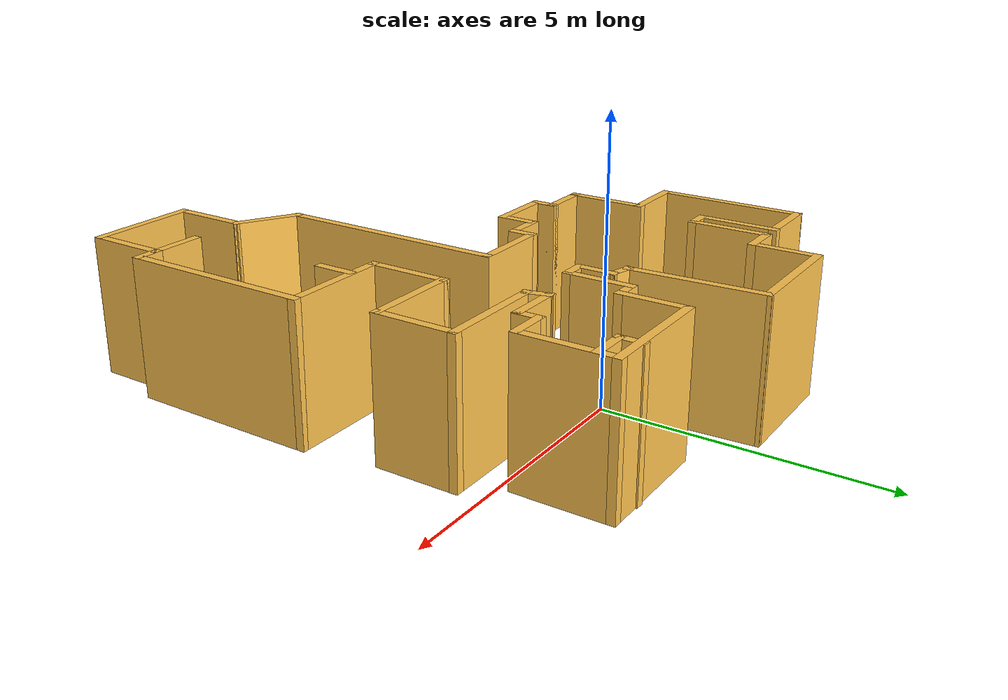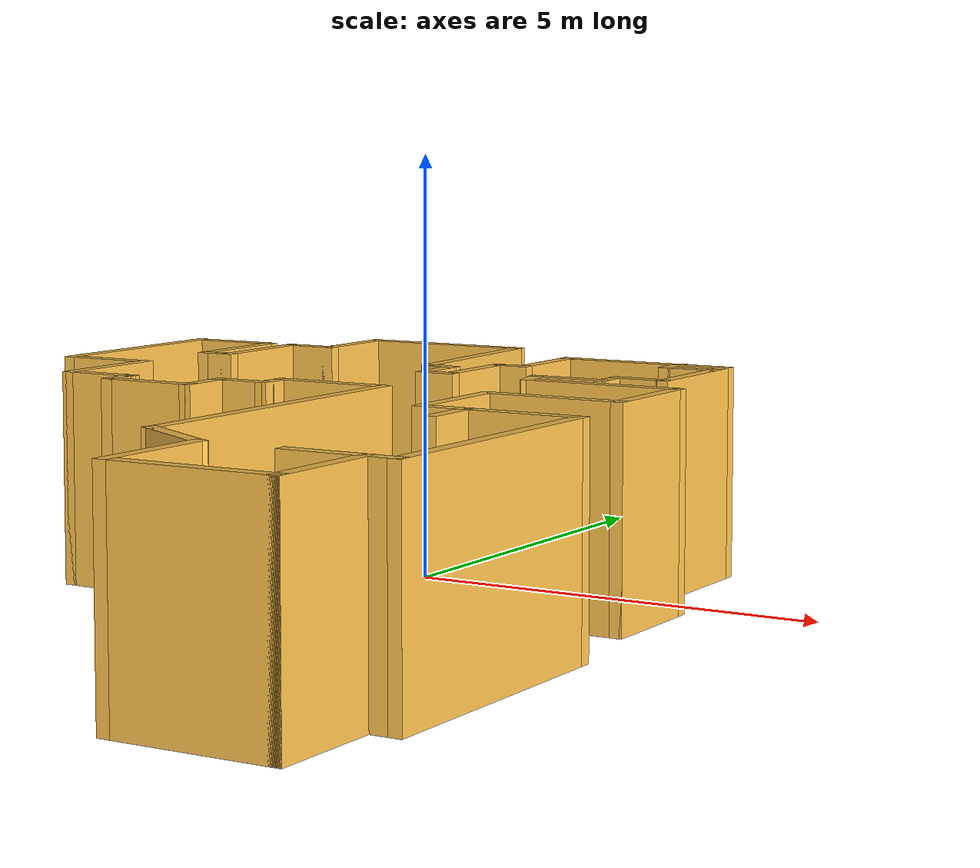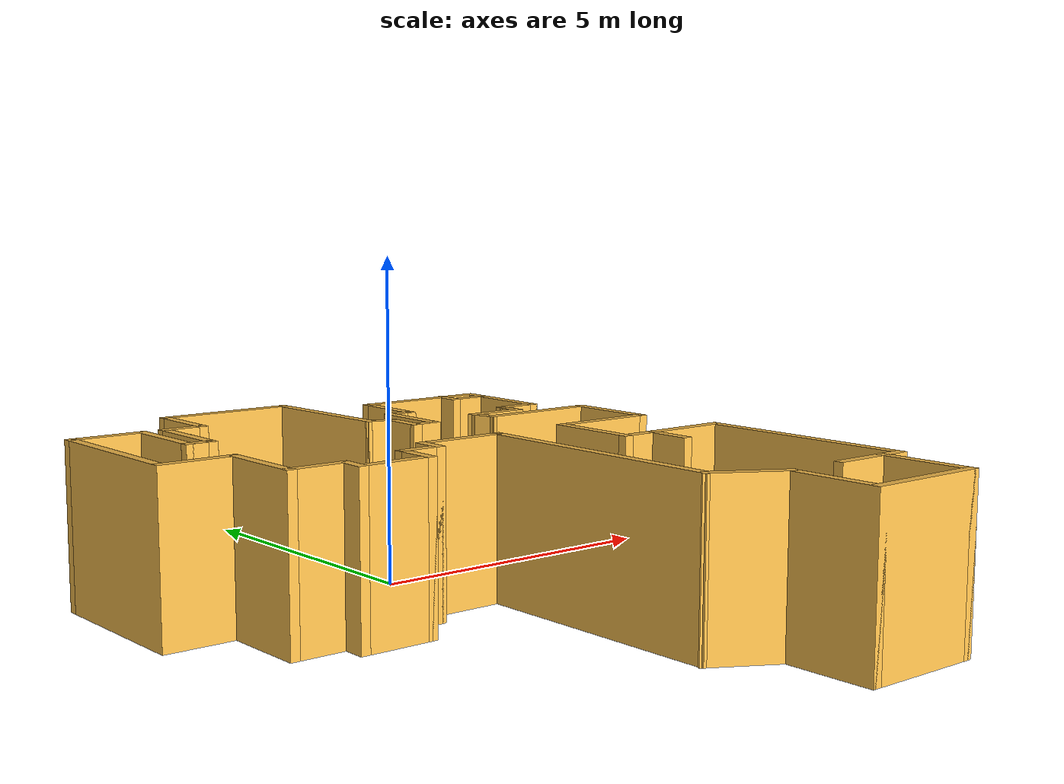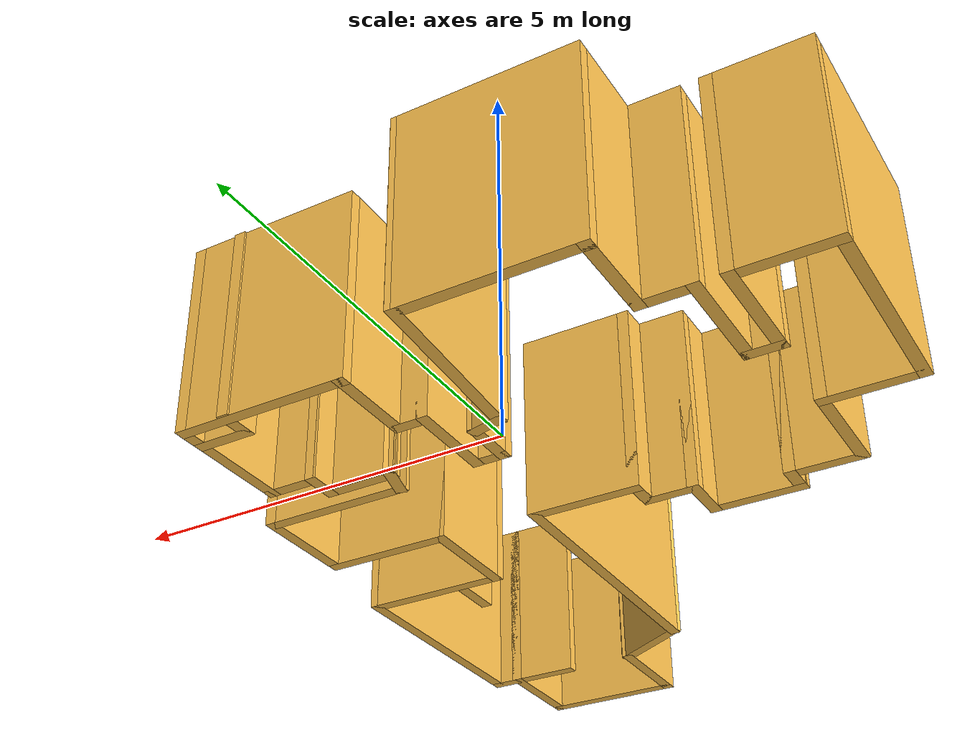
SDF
<?xml version='1.0'?>
<sdf version='1.6'>
  <model name='map_54'>
    <pose frame=''>-0.329924 -2.62834 0 0 -0 0</pose>
    <link name='Wall_0'>
      <collision name='Wall_0_Collision'>
        <geometry>
          <box>
            <size>2.25 0.15 2.5</size>
          </box>
        </geometry>
        <pose frame=''>0 0 1.25 0 -0 0</pose>
      </collision>
      <visual name='Wall_0_Visual'>
        <pose frame=''>0 0 1.25 0 -0 0</pose>
        <geometry>
          <box>
            <size>2.25 0.15 2.5</size>
          </box>
        </geometry>
        <material>
          <script>
            <uri>file://media/materials/scripts/gazebo.material</uri>
            <name>Gazebo/Grey</name>
          </script>
          <ambient>1 0.764706 0.305882 1</ambient>
        </material>
        <meta>
          <layer>0</layer>
        </meta>
      </visual>
      <pose frame=''>-0.976314 5.22301 0 0 -0 3.14159</pose>
    </link>
    <link name='Wall_1'>
      <collision name='Wall_1_Collision'>
        <geometry>
          <box>
            <size>1.25 0.15 2.5</size>
          </box>
        </geometry>
        <pose frame=''>0 0 1.25 0 -0 0</pose>
      </collision>
      <visual name='Wall_1_Visual'>
        <pose frame=''>0 0 1.25 0 -0 0</pose>
        <geometry>
          <box>
            <size>1.25 0.15 2.5</size>
          </box>
        </geometry>
        <material>
          <script>
            <uri>file://media/materials/scripts/gazebo.material</uri>
            <name>Gazebo/Grey</name>
          </script>
          <ambient>1 0.764706 0.305882 1</ambient>
        </material>
        <meta>
          <layer>0</layer>
        </meta>
      </visual>
      <pose frame=''>-2.02631 4.67301 0 0 -0 -1.5708</pose>
    </link>
    <link name='Wall_10'>
      <collision name='Wall_10_Collision'>
        <geometry>
          <box>
            <size>1.25 0.15 2.5</size>
          </box>
        </geometry>
        <pose frame=''>0 0 1.25 0 -0 0</pose>
      </collision>
      <visual name='Wall_10_Visual'>
        <pose frame=''>0 0 1.25 0 -0 0</pose>
        <geometry>
          <box>
            <size>1.25 0.15 2.5</size>
          </box>
        </geometry>
        <material>
          <script>
            <uri>file://media/materials/scripts/gazebo.material</uri>
            <name>Gazebo/Grey</name>
          </script>
          <ambient>1 0.764706 0.305882 1</ambient>
        </material>
        <meta>
          <layer>0</layer>
        </meta>
      </visual>
      <pose frame=''>-3.52631 1.52301 0 0 -0 0</pose>
    </link>
    <link name='Wall_11'>
      <collision name='Wall_11_Collision'>
        <geometry>
          <box>
            <size>1.5 0.15 2.5</size>
          </box>
        </geometry>
        <pose frame=''>0 0 1.25 0 -0 0</pose>
      </collision>
      <visual name='Wall_11_Visual'>
        <pose frame=''>0 0 1.25 0 -0 0</pose>
        <geometry>
          <box>
            <size>1.5 0.15 2.5</size>
          </box>
        </geometry>
        <material>
          <script>
            <uri>file://media/materials/scripts/gazebo.material</uri>
            <name>Gazebo/Grey</name>
          </script>
          <ambient>1 0.764706 0.305882 1</ambient>
        </material>
        <meta>
          <layer>0</layer>
        </meta>
      </visual>
      <pose frame=''>-2.97631 0.848012 0 0 -0 -1.5708</pose>
    </link>
    <link name='Wall_12'>
      <collision name='Wall_12_Collision'>
        <geometry>
          <box>
            <size>1 0.15 2.5</size>
          </box>
        </geometry>
        <pose frame=''>0 0 1.25 0 -0 0</pose>
      </collision>
      <visual name='Wall_12_Visual'>
        <pose frame=''>0 0 1.25 0 -0 0</pose>
        <geometry>
          <box>
            <size>1 0.15 2.5</size>
          </box>
        </geometry>
        <material>
          <script>
            <uri>file://media/materials/scripts/gazebo.material</uri>
            <name>Gazebo/Grey</name>
          </script>
          <ambient>1 0.764706 0.305882 1</ambient>
        </material>
        <meta>
          <layer>0</layer>
        </meta>
      </visual>
      <pose frame=''>-2.55131 0.173012 0 0 -0 0</pose>
    </link>
    <link name='Wall_13'>
      <collision name='Wall_13_Collision'>
        <geometry>
          <box>
            <size>0.5 0.15 2.5</size>
          </box>
        </geometry>
        <pose frame=''>0 0 1.25 0 -0 0</pose>
      </collision>
      <visual name='Wall_13_Visual'>
        <pose frame=''>0 0 1.25 0 -0 0</pose>
        <geometry>
          <box>
            <size>0.5 0.15 2.5</size>
          </box>
        </geometry>
        <material>
          <script>
            <uri>file://media/materials/scripts/gazebo.material</uri>
            <name>Gazebo/Grey</name>
          </script>
          <ambient>1 0.764706 0.305882 1</ambient>
        </material>
        <meta>
          <layer>0</layer>
        </meta>
      </visual>
      <pose frame=''>-2.12631 -0.001988 0 0 -0 -1.5708</pose>
    </link>
    <link name='Wall_14'>
      <collision name='Wall_14_Collision'>
        <geometry>
          <box>
            <size>1.25 0.15 2.5</size>
          </box>
        </geometry>
        <pose frame=''>0 0 1.25 0 -0 0</pose>
      </collision>
      <visual name='Wall_14_Visual'>
        <pose frame=''>0 0 1.25 0 -0 0</pose>
        <geometry>
          <box>
            <size>1.25 0.15 2.5</size>
          </box>
        </geometry>
        <material>
          <script>
            <uri>file://media/materials/scripts/gazebo.material</uri>
            <name>Gazebo/Grey</name>
          </script>
          <ambient>1 0.764706 0.305882 1</ambient>
        </material>
        <meta>
          <layer>0</layer>
        </meta>
      </visual>
      <pose frame=''>-1.57631 -0.176988 0 0 -0 0</pose>
    </link>
    <link name='Wall_15'>
      <collision name='Wall_15_Collision'>
        <geometry>
          <box>
            <size>0.75 0.15 2.5</size>
          </box>
        </geometry>
        <pose frame=''>0 0 1.25 0 -0 0</pose>
      </collision>
      <visual name='Wall_15_Visual'>
        <pose frame=''>0 0 1.25 0 -0 0</pose>
        <geometry>
          <box>
            <size>0.75 0.15 2.5</size>
          </box>
        </geometry>
        <material>
          <script>
            <uri>file://media/materials/scripts/gazebo.material</uri>
            <name>Gazebo/Grey</name>
          </script>
          <ambient>1 0.764706 0.305882 1</ambient>
        </material>
        <meta>
          <layer>0</layer>
        </meta>
      </visual>
      <pose frame=''>-1.02631 0.123012 0 0 -0 1.5708</pose>
    </link>
    <link name='Wall_16'>
      <collision name='Wall_16_Collision'>
        <geometry>
          <box>
            <size>0.75 0.15 2.5</size>
          </box>
        </geometry>
        <pose frame=''>0 0 1.25 0 -0 0</pose>
      </collision>
      <visual name='Wall_16_Visual'>
        <pose frame=''>0 0 1.25 0 -0 0</pose>
        <geometry>
          <box>
            <size>0.75 0.15 2.5</size>
          </box>
        </geometry>
        <material>
          <script>
            <uri>file://media/materials/scripts/gazebo.material</uri>
            <name>Gazebo/Grey</name>
          </script>
          <ambient>1 0.764706 0.305882 1</ambient>
        </material>
        <meta>
          <layer>0</layer>
        </meta>
      </visual>
      <pose frame=''>-0.726314 0.423012 0 0 -0 0</pose>
    </link>
    <link name='Wall_17'>
      <collision name='Wall_17_Collision'>
        <geometry>
          <box>
            <size>0.5 0.15 2.5</size>
          </box>
        </geometry>
        <pose frame=''>0 0 1.25 0 -0 0</pose>
      </collision>
      <visual name='Wall_17_Visual'>
        <pose frame=''>0 0 1.25 0 -0 0</pose>
        <geometry>
          <box>
            <size>0.5 0.15 2.5</size>
          </box>
        </geometry>
        <material>
          <script>
            <uri>file://media/materials/scripts/gazebo.material</uri>
            <name>Gazebo/Grey</name>
          </script>
          <ambient>1 0.764706 0.305882 1</ambient>
        </material>
        <meta>
          <layer>0</layer>
        </meta>
      </visual>
      <pose frame=''>-0.426314 0.598012 0 0 -0 1.5708</pose>
    </link>
    <link name='Wall_18'>
      <collision name='Wall_18_Collision'>
        <geometry>
          <box>
            <size>1.5 0.15 2.5</size>
          </box>
        </geometry>
        <pose frame=''>0 0 1.25 0 -0 0</pose>
      </collision>
      <visual name='Wall_18_Visual'>
        <pose frame=''>0 0 1.25 0 -0 0</pose>
        <geometry>
          <box>
            <size>1.5 0.15 2.5</size>
          </box>
        </geometry>
        <material>
          <script>
            <uri>file://media/materials/scripts/gazebo.material</uri>
            <name>Gazebo/Grey</name>
          </script>
          <ambient>1 0.764706 0.305882 1</ambient>
        </material>
        <meta>
          <layer>0</layer>
        </meta>
      </visual>
      <pose frame=''>0.248686 0.773012 0 0 -0 0</pose>
    </link>
    <link name='Wall_19'>
      <collision name='Wall_19_Collision'>
        <geometry>
          <box>
            <size>4.25 0.15 2.5</size>
          </box>
        </geometry>
        <pose frame=''>0 0 1.25 0 -0 0</pose>
      </collision>
      <visual name='Wall_19_Visual'>
        <pose frame=''>0 0 1.25 0 -0 0</pose>
        <geometry>
          <box>
            <size>4.25 0.15 2.5</size>
          </box>
        </geometry>
        <material>
          <script>
            <uri>file://media/materials/scripts/gazebo.material</uri>
            <name>Gazebo/Grey</name>
          </script>
          <ambient>1 0.764706 0.305882 1</ambient>
        </material>
        <meta>
          <layer>0</layer>
        </meta>
      </visual>
      <pose frame=''>0.923686 -1.27699 0 0 -0 -1.5708</pose>
    </link>
    <link name='Wall_20'>
      <collision name='Wall_20_Collision'>
        <geometry>
          <box>
            <size>1.25 0.15 2.5</size>
          </box>
        </geometry>
        <pose frame=''>0 0 1.25 0 -0 0</pose>
      </collision>
      <visual name='Wall_20_Visual'>
        <pose frame=''>0 0 1.25 0 -0 0</pose>
        <geometry>
          <box>
            <size>1.25 0.15 2.5</size>
          </box>
        </geometry>
        <material>
          <script>
            <uri>file://media/materials/scripts/gazebo.material</uri>
            <name>Gazebo/Grey</name>
          </script>
          <ambient>1 0.764706 0.305882 1</ambient>
        </material>
        <meta>
          <layer>0</layer>
        </meta>
      </visual>
      <pose frame=''>1.4 -3.60199 0 0 -0 -0.523599</pose>
    </link>
    <link name='Wall_21'>
      <collision name='Wall_21_Collision'>
        <geometry>
          <box>
            <size>1.5 0.15 2.5</size>
          </box>
        </geometry>
        <pose frame=''>0 0 1.25 0 -0 0</pose>
      </collision>
      <visual name='Wall_21_Visual'>
        <pose frame=''>0 0 1.25 0 -0 0</pose>
        <geometry>
          <box>
            <size>1.5 0.15 2.5</size>
          </box>
        </geometry>
        <material>
          <script>
            <uri>file://media/materials/scripts/gazebo.material</uri>
            <name>Gazebo/Grey</name>
          </script>
          <ambient>1 0.764706 0.305882 1</ambient>
        </material>
        <meta>
          <layer>0</layer>
        </meta>
      </visual>
      <pose frame=''>1.87631 -4.55199 0 0 -0 -1.5708</pose>
    </link>
    <link name='Wall_22'>
      <collision name='Wall_22_Collision'>
        <geometry>
          <box>
            <size>2 0.15 2.5</size>
          </box>
        </geometry>
        <pose frame=''>0 0 1.25 0 -0 0</pose>
      </collision>
      <visual name='Wall_22_Visual'>
        <pose frame=''>0 0 1.25 0 -0 0</pose>
        <geometry>
          <box>
            <size>2 0.15 2.5</size>
          </box>
        </geometry>
        <material>
          <script>
            <uri>file://media/materials/scripts/gazebo.material</uri>
            <name>Gazebo/Grey</name>
          </script>
          <ambient>1 0.764706 0.305882 1</ambient>
        </material>
        <meta>
          <layer>0</layer>
        </meta>
      </visual>
      <pose frame=''>2.80131 -5.22699 0 0 -0 0</pose>
    </link>
    <link name='Wall_23'>
      <collision name='Wall_23_Collision'>
        <geometry>
          <box>
            <size>1.5 0.15 2.5</size>
          </box>
        </geometry>
        <pose frame=''>0 0 1.25 0 -0 0</pose>
      </collision>
      <visual name='Wall_23_Visual'>
        <pose frame=''>0 0 1.25 0 -0 0</pose>
        <geometry>
          <box>
            <size>1.5 0.15 2.5</size>
          </box>
        </geometry>
        <material>
          <script>
            <uri>file://media/materials/scripts/gazebo.material</uri>
            <name>Gazebo/Grey</name>
          </script>
          <ambient>1 0.764706 0.305882 1</ambient>
        </material>
        <meta>
          <layer>0</layer>
        </meta>
      </visual>
      <pose frame=''>3.72631 -4.55199 0 0 -0 1.5708</pose>
    </link>
    <link name='Wall_24'>
      <collision name='Wall_24_Collision'>
        <geometry>
          <box>
            <size>0.5 0.15 2.5</size>
          </box>
        </geometry>
        <pose frame=''>0 0 1.25 0 -0 0</pose>
      </collision>
      <visual name='Wall_24_Visual'>
        <pose frame=''>0 0 1.25 0 -0 0</pose>
        <geometry>
          <box>
            <size>0.5 0.15 2.5</size>
          </box>
        </geometry>
        <material>
          <script>
            <uri>file://media/materials/scripts/gazebo.material</uri>
            <name>Gazebo/Grey</name>
          </script>
          <ambient>1 0.764706 0.305882 1</ambient>
        </material>
        <meta>
          <layer>0</layer>
        </meta>
      </visual>
      <pose frame=''>3.90131 -3.87699 0 0 -0 0</pose>
    </link>
    <link name='Wall_25'>
      <collision name='Wall_25_Collision'>
        <geometry>
          <box>
            <size>3.5 0.15 2.5</size>
          </box>
        </geometry>
        <pose frame=''>0 0 1.25 0 -0 0</pose>
      </collision>
      <visual name='Wall_25_Visual'>
        <pose frame=''>0 0 1.25 0 -0 0</pose>
        <geometry>
          <box>
            <size>3.5 0.15 2.5</size>
          </box>
        </geometry>
        <material>
          <script>
            <uri>file://media/materials/scripts/gazebo.material</uri>
            <name>Gazebo/Grey</name>
          </script>
          <ambient>1 0.764706 0.305882 1</ambient>
        </material>
        <meta>
          <layer>0</layer>
        </meta>
      </visual>
      <pose frame=''>4.07631 -2.20199 0 0 -0 1.5708</pose>
    </link>
    <link name='Wall_26'>
      <collision name='Wall_26_Collision'>
        <geometry>
          <box>
            <size>2 0.15 2.5</size>
          </box>
        </geometry>
        <pose frame=''>0 0 1.25 0 -0 0</pose>
      </collision>
      <visual name='Wall_26_Visual'>
        <pose frame=''>0 0 1.25 0 -0 0</pose>
        <geometry>
          <box>
            <size>2 0.15 2.5</size>
          </box>
        </geometry>
        <material>
          <script>
            <uri>file://media/materials/scripts/gazebo.material</uri>
            <name>Gazebo/Grey</name>
          </script>
          <ambient>1 0.764706 0.305882 1</ambient>
        </material>
        <meta>
          <layer>0</layer>
        </meta>
      </visual>
      <pose frame=''>3.15131 -0.526988 0 0 -0 3.14159</pose>
    </link>
    <link name='Wall_27'>
      <collision name='Wall_27_Collision'>
        <geometry>
          <box>
            <size>1.5 0.15 2.5</size>
          </box>
        </geometry>
        <pose frame=''>0 0 1.25 0 -0 0</pose>
      </collision>
      <visual name='Wall_27_Visual'>
        <pose frame=''>0 0 1.25 0 -0 0</pose>
        <geometry>
          <box>
            <size>1.5 0.15 2.5</size>
          </box>
        </geometry>
        <material>
          <script>
            <uri>file://media/materials/scripts/gazebo.material</uri>
            <name>Gazebo/Grey</name>
          </script>
          <ambient>1 0.764706 0.305882 1</ambient>
        </material>
        <meta>
          <layer>0</layer>
        </meta>
      </visual>
      <pose frame=''>2.22631 0.148012 0 0 -0 1.5708</pose>
    </link>
    <link name='Wall_28'>
      <collision name='Wall_28_Collision'>
        <geometry>
          <box>
            <size>1.75 0.15 2.5</size>
          </box>
        </geometry>
        <pose frame=''>0 0 1.25 0 -0 0</pose>
      </collision>
      <visual name='Wall_28_Visual'>
        <pose frame=''>0 0 1.25 0 -0 0</pose>
        <geometry>
          <box>
            <size>1.75 0.15 2.5</size>
          </box>
        </geometry>
        <material>
          <script>
            <uri>file://media/materials/scripts/gazebo.material</uri>
            <name>Gazebo/Grey</name>
          </script>
          <ambient>1 0.764706 0.305882 1</ambient>
        </material>
        <meta>
          <layer>0</layer>
        </meta>
      </visual>
      <pose frame=''>3.02631 0.823012 0 0 -0 0</pose>
    </link>
    <link name='Wall_29'>
      <collision name='Wall_29_Collision'>
        <geometry>
          <box>
            <size>1.5 0.15 2.5</size>
          </box>
        </geometry>
        <pose frame=''>0 0 1.25 0 -0 0</pose>
      </collision>
      <visual name='Wall_29_Visual'>
        <pose frame=''>0 0 1.25 0 -0 0</pose>
        <geometry>
          <box>
            <size>1.5 0.15 2.5</size>
          </box>
        </geometry>
        <material>
          <script>
            <uri>file://media/materials/scripts/gazebo.material</uri>
            <name>Gazebo/Grey</name>
          </script>
          <ambient>1 0.764706 0.305882 1</ambient>
        </material>
        <meta>
          <layer>0</layer>
        </meta>
      </visual>
      <pose frame=''>3.82631 1.49801 0 0 -0 1.5708</pose>
    </link>
    <link name='Wall_30'>
      <collision name='Wall_30_Collision'>
        <geometry>
          <box>
            <size>2 0.15 2.5</size>
          </box>
        </geometry>
        <pose frame=''>0 0 1.25 0 -0 0</pose>
      </collision>
      <visual name='Wall_30_Visual'>
        <pose frame=''>0 0 1.25 0 -0 0</pose>
        <geometry>
          <box>
            <size>2 0.15 2.5</size>
          </box>
        </geometry>
        <material>
          <script>
            <uri>file://media/materials/scripts/gazebo.material</uri>
            <name>Gazebo/Grey</name>
          </script>
          <ambient>1 0.764706 0.305882 1</ambient>
        </material>
        <meta>
          <layer>0</layer>
        </meta>
      </visual>
      <pose frame=''>2.90131 2.17301 0 0 -0 3.14159</pose>
    </link>
    <link name='Wall_31'>
      <collision name='Wall_31_Collision'>
        <geometry>
          <box>
            <size>0.5 0.15 2.5</size>
          </box>
        </geometry>
        <pose frame=''>0 0 1.25 0 -0 0</pose>
      </collision>
      <visual name='Wall_31_Visual'>
        <pose frame=''>0 0 1.25 0 -0 0</pose>
        <geometry>
          <box>
            <size>0.5 0.15 2.5</size>
          </box>
        </geometry>
        <material>
          <script>
            <uri>file://media/materials/scripts/gazebo.material</uri>
            <name>Gazebo/Grey</name>
          </script>
          <ambient>1 0.764706 0.305882 1</ambient>
        </material>
        <meta>
          <layer>0</layer>
        </meta>
      </visual>
      <pose frame=''>1.93102 2.34205 0 0 -0 1.8326</pose>
    </link>
    <link name='Wall_32'>
      <collision name='Wall_32_Collision'>
        <geometry>
          <box>
            <size>1 0.15 2.5</size>
          </box>
        </geometry>
        <pose frame=''>0 0 1.25 0 -0 0</pose>
      </collision>
      <visual name='Wall_32_Visual'>
        <pose frame=''>0 0 1.25 0 -0 0</pose>
        <geometry>
          <box>
            <size>1 0.15 2.5</size>
          </box>
        </geometry>
        <material>
          <script>
            <uri>file://media/materials/scripts/gazebo.material</uri>
            <name>Gazebo/Grey</name>
          </script>
          <ambient>1 0.764706 0.305882 1</ambient>
        </material>
        <meta>
          <layer>0</layer>
        </meta>
      </visual>
      <pose frame=''>2.31073 2.51109 0 0 -0 0</pose>
    </link>
    <link name='Wall_33'>
      <collision name='Wall_33_Collision'>
        <geometry>
          <box>
            <size>0.5 0.15 2.5</size>
          </box>
        </geometry>
        <pose frame=''>0 0 1.25 0 -0 0</pose>
      </collision>
      <visual name='Wall_33_Visual'>
        <pose frame=''>0 0 1.25 0 -0 0</pose>
        <geometry>
          <box>
            <size>0.5 0.15 2.5</size>
          </box>
        </geometry>
        <material>
          <script>
            <uri>file://media/materials/scripts/gazebo.material</uri>
            <name>Gazebo/Grey</name>
          </script>
          <ambient>1 0.764706 0.305882 1</ambient>
        </material>
        <meta>
          <layer>0</layer>
        </meta>
      </visual>
      <pose frame=''>2.73573 2.68609 0 0 -0 1.5708</pose>
    </link>
    <link name='Wall_34'>
      <collision name='Wall_34_Collision'>
        <geometry>
          <box>
            <size>0.75 0.15 2.5</size>
          </box>
        </geometry>
        <pose frame=''>0 0 1.25 0 -0 0</pose>
      </collision>
      <visual name='Wall_34_Visual'>
        <pose frame=''>0 0 1.25 0 -0 0</pose>
        <geometry>
          <box>
            <size>0.75 0.15 2.5</size>
          </box>
        </geometry>
        <material>
          <script>
            <uri>file://media/materials/scripts/gazebo.material</uri>
            <name>Gazebo/Grey</name>
          </script>
          <ambient>1 0.764706 0.305882 1</ambient>
        </material>
        <meta>
          <layer>0</layer>
        </meta>
      </visual>
      <pose frame=''>3.03573 2.86109 0 0 -0 0</pose>
    </link>
    <link name='Wall_35'>
      <collision name='Wall_35_Collision'>
        <geometry>
          <box>
            <size>1.75 0.15 2.5</size>
          </box>
        </geometry>
        <pose frame=''>0 0 1.25 0 -0 0</pose>
      </collision>
      <visual name='Wall_35_Visual'>
        <pose frame=''>0 0 1.25 0 -0 0</pose>
        <geometry>
          <box>
            <size>1.75 0.15 2.5</size>
          </box>
        </geometry>
        <material>
          <script>
            <uri>file://media/materials/scripts/gazebo.material</uri>
            <name>Gazebo/Grey</name>
          </script>
          <ambient>1 0.764706 0.305882 1</ambient>
        </material>
        <meta>
          <layer>0</layer>
        </meta>
      </visual>
      <pose frame=''>3.33573 3.66109 0 0 -0 1.5708</pose>
    </link>
    <link name='Wall_36'>
      <collision name='Wall_36_Collision'>
        <geometry>
          <box>
            <size>2.25 0.15 2.5</size>
          </box>
        </geometry>
        <pose frame=''>0 0 1.25 0 -0 0</pose>
      </collision>
      <visual name='Wall_36_Visual'>
        <pose frame=''>0 0 1.25 0 -0 0</pose>
        <geometry>
          <box>
            <size>2.25 0.15 2.5</size>
          </box>
        </geometry>
        <material>
          <script>
            <uri>file://media/materials/scripts/gazebo.material</uri>
            <name>Gazebo/Grey</name>
          </script>
          <ambient>1 0.764706 0.305882 1</ambient>
        </material>
        <meta>
          <layer>0</layer>
        </meta>
      </visual>
      <pose frame=''>2.28573 4.46109 0 0 -0 3.14159</pose>
    </link>
    <link name='Wall_37'>
      <collision name='Wall_37_Collision'>
        <geometry>
          <box>
            <size>1.25 0.15 2.5</size>
          </box>
        </geometry>
        <pose frame=''>0 0 1.25 0 -0 0</pose>
      </collision>
      <visual name='Wall_37_Visual'>
        <pose frame=''>0 0 1.25 0 -0 0</pose>
        <geometry>
          <box>
            <size>1.25 0.15 2.5</size>
          </box>
        </geometry>
        <material>
          <script>
            <uri>file://media/materials/scripts/gazebo.material</uri>
            <name>Gazebo/Grey</name>
          </script>
          <ambient>1 0.764706 0.305882 1</ambient>
        </material>
        <meta>
          <layer>0</layer>
        </meta>
      </visual>
      <pose frame=''>1.23573 3.91109 0 0 -0 -1.5708</pose>
    </link>
    <link name='Wall_38'>
      <collision name='Wall_38_Collision'>
        <geometry>
          <box>
            <size>0.5 0.15 2.5</size>
          </box>
        </geometry>
        <pose frame=''>0 0 1.25 0 -0 0</pose>
      </collision>
      <visual name='Wall_38_Visual'>
        <pose frame=''>0 0 1.25 0 -0 0</pose>
        <geometry>
          <box>
            <size>0.5 0.15 2.5</size>
          </box>
        </geometry>
        <material>
          <script>
            <uri>file://media/materials/scripts/gazebo.material</uri>
            <name>Gazebo/Grey</name>
          </script>
          <ambient>1 0.764706 0.305882 1</ambient>
        </material>
        <meta>
          <layer>0</layer>
        </meta>
      </visual>
      <pose frame=''>1.06073 3.36109 0 0 -0 3.14159</pose>
    </link>
    <link name='Wall_39'>
      <collision name='Wall_39_Collision'>
        <geometry>
          <box>
            <size>1.25 0.15 2.5</size>
          </box>
        </geometry>
        <pose frame=''>0 0 1.25 0 -0 0</pose>
      </collision>
      <visual name='Wall_39_Visual'>
        <pose frame=''>0 0 1.25 0 -0 0</pose>
        <geometry>
          <box>
            <size>1.25 0.15 2.5</size>
          </box>
        </geometry>
        <material>
          <script>
            <uri>file://media/materials/scripts/gazebo.material</uri>
            <name>Gazebo/Grey</name>
          </script>
          <ambient>1 0.764706 0.305882 1</ambient>
        </material>
        <meta>
          <layer>0</layer>
        </meta>
      </visual>
      <pose frame=''>0.885727 2.81109 0 0 -0 -1.5708</pose>
    </link>
    <link name='Wall_4'>
      <collision name='Wall_4_Collision'>
        <geometry>
          <box>
            <size>0.75 0.15 2.5</size>
          </box>
        </geometry>
        <pose frame=''>0 0 1.25 0 -0 0</pose>
      </collision>
      <visual name='Wall_4_Visual'>
        <pose frame=''>0 0 1.25 0 -0 0</pose>
        <geometry>
          <box>
            <size>0.75 0.15 2.5</size>
          </box>
        </geometry>
        <material>
          <script>
            <uri>file://media/materials/scripts/gazebo.material</uri>
            <name>Gazebo/Grey</name>
          </script>
          <ambient>1 0.764706 0.305882 1</ambient>
        </material>
        <meta>
          <layer>0</layer>
        </meta>
      </visual>
      <pose frame=''>-2.32631 4.12301 0 0 -0 3.14159</pose>
    </link>
    <link name='Wall_40'>
      <collision name='Wall_40_Collision'>
        <geometry>
          <box>
            <size>0.5 0.15 2.5</size>
          </box>
        </geometry>
        <pose frame=''>0 0 1.25 0 -0 0</pose>
      </collision>
      <visual name='Wall_40_Visual'>
        <pose frame=''>0 0 1.25 0 -0 0</pose>
        <geometry>
          <box>
            <size>0.5 0.15 2.5</size>
          </box>
        </geometry>
        <material>
          <script>
            <uri>file://media/materials/scripts/gazebo.material</uri>
            <name>Gazebo/Grey</name>
          </script>
          <ambient>1 0.764706 0.305882 1</ambient>
        </material>
        <meta>
          <layer>0</layer>
        </meta>
      </visual>
      <pose frame=''>0.710727 2.26109 0 0 -0 3.14159</pose>
    </link>
    <link name='Wall_41'>
      <collision name='Wall_41_Collision'>
        <geometry>
          <box>
            <size>0.75 0.15 2.5</size>
          </box>
        </geometry>
        <pose frame=''>0 0 1.25 0 -0 0</pose>
      </collision>
      <visual name='Wall_41_Visual'>
        <pose frame=''>0 0 1.25 0 -0 0</pose>
        <geometry>
          <box>
            <size>0.75 0.15 2.5</size>
          </box>
        </geometry>
        <material>
          <script>
            <uri>file://media/materials/scripts/gazebo.material</uri>
            <name>Gazebo/Grey</name>
          </script>
          <ambient>1 0.764706 0.305882 1</ambient>
        </material>
        <meta>
          <layer>0</layer>
        </meta>
      </visual>
      <pose frame=''>0.535727 2.56109 0 0 -0 1.5708</pose>
    </link>
    <link name='Wall_42'>
      <collision name='Wall_42_Collision'>
        <geometry>
          <box>
            <size>0.5 0.15 2.5</size>
          </box>
        </geometry>
        <pose frame=''>0 0 1.25 0 -0 0</pose>
      </collision>
      <visual name='Wall_42_Visual'>
        <pose frame=''>0 0 1.25 0 -0 0</pose>
        <geometry>
          <box>
            <size>0.5 0.15 2.5</size>
          </box>
        </geometry>
        <material>
          <script>
            <uri>file://media/materials/scripts/gazebo.material</uri>
            <name>Gazebo/Grey</name>
          </script>
          <ambient>1 0.764706 0.305882 1</ambient>
        </material>
        <meta>
          <layer>0</layer>
        </meta>
      </visual>
      <pose frame=''>0.36669 2.90638 0 0 -0 2.87979</pose>
    </link>
    <link name='Wall_43'>
      <collision name='Wall_43_Collision'>
        <geometry>
          <box>
            <size>2.42472 0.15 2.5</size>
          </box>
        </geometry>
        <pose frame=''>0 0 1.25 0 -0 0</pose>
      </collision>
      <visual name='Wall_43_Visual'>
        <pose frame=''>0 0 1.25 0 -0 0</pose>
        <geometry>
          <box>
            <size>2.42472 0.15 2.5</size>
          </box>
        </geometry>
        <material>
          <script>
            <uri>file://media/materials/scripts/gazebo.material</uri>
            <name>Gazebo/Grey</name>
          </script>
          <ambient>1 0.764706 0.305882 1</ambient>
        </material>
        <meta>
          <layer>0</layer>
        </meta>
      </visual>
      <pose frame=''>0.13567 4.08734 0 0 -0 1.62532</pose>
    </link>
    <link name='Wall_45'>
      <collision name='Wall_45_Collision'>
        <geometry>
          <box>
            <size>0.75 0.15 2.5</size>
          </box>
        </geometry>
        <pose frame=''>0 0 1.25 0 -0 0</pose>
      </collision>
      <visual name='Wall_45_Visual'>
        <pose frame=''>0 0 1.25 0 -0 0</pose>
        <geometry>
          <box>
            <size>0.75 0.15 2.5</size>
          </box>
        </geometry>
        <material>
          <script>
            <uri>file://media/materials/scripts/gazebo.material</uri>
            <name>Gazebo/Grey</name>
          </script>
          <ambient>1 0.764706 0.305882 1</ambient>
        </material>
        <meta>
          <layer>0</layer>
        </meta>
      </visual>
      <pose frame=''>2.76563 -0.858541 0 0 -0 -1.5708</pose>
    </link>
    <link name='Wall_47'>
      <collision name='Wall_47_Collision'>
        <geometry>
          <box>
            <size>1 0.15 2.5</size>
          </box>
        </geometry>
        <pose frame=''>0 0 1.25 0 -0 0</pose>
      </collision>
      <visual name='Wall_47_Visual'>
        <pose frame=''>0 0 1.25 0 -0 0</pose>
        <geometry>
          <box>
            <size>1 0.15 2.5</size>
          </box>
        </geometry>
        <material>
          <script>
            <uri>file://media/materials/scripts/gazebo.material</uri>
            <name>Gazebo/Grey</name>
          </script>
          <ambient>1 0.764706 0.305882 1</ambient>
        </material>
        <meta>
          <layer>0</layer>
        </meta>
      </visual>
      <pose frame=''>3.30131 -3.87699 0 0 -0 3.14159</pose>
    </link>
    <link name='Wall_49'>
      <collision name='Wall_49_Collision'>
        <geometry>
          <box>
            <size>0.5 0.15 2.5</size>
          </box>
        </geometry>
        <pose frame=''>0 0 1.25 0 -0 0</pose>
      </collision>
      <visual name='Wall_49_Visual'>
        <pose frame=''>0 0 1.25 0 -0 0</pose>
        <geometry>
          <box>
            <size>0.5 0.15 2.5</size>
          </box>
        </geometry>
        <material>
          <script>
            <uri>file://media/materials/scripts/gazebo.material</uri>
            <name>Gazebo/Grey</name>
          </script>
          <ambient>1 0.764706 0.305882 1</ambient>
        </material>
        <meta>
          <layer>0</layer>
        </meta>
      </visual>
      <pose frame=''>2.73504 4.31385 0 0 -0 -1.5708</pose>
    </link>
    <link name='Wall_5'>
      <collision name='Wall_5_Collision'>
        <geometry>
          <box>
            <size>1.5 0.15 2.5</size>
          </box>
        </geometry>
        <pose frame=''>0 0 1.25 0 -0 0</pose>
      </collision>
      <visual name='Wall_5_Visual'>
        <pose frame=''>0 0 1.25 0 -0 0</pose>
        <geometry>
          <box>
            <size>1.5 0.15 2.5</size>
          </box>
        </geometry>
        <material>
          <script>
            <uri>file://media/materials/scripts/gazebo.material</uri>
            <name>Gazebo/Grey</name>
          </script>
          <ambient>1 0.764706 0.305882 1</ambient>
        </material>
        <meta>
          <layer>0</layer>
        </meta>
      </visual>
      <pose frame=''>-2.62631 3.44801 0 0 -0 -1.5708</pose>
    </link>
    <link name='Wall_50'>
      <collision name='Wall_50_Collision'>
        <geometry>
          <box>
            <size>0.75 0.15 2.5</size>
          </box>
        </geometry>
        <pose frame=''>0 0 1.25 0 -0 0</pose>
      </collision>
      <visual name='Wall_50_Visual'>
        <pose frame=''>0 0 1.25 0 -0 0</pose>
        <geometry>
          <box>
            <size>0.75 0.15 2.5</size>
          </box>
        </geometry>
        <material>
          <script>
            <uri>file://media/materials/scripts/gazebo.material</uri>
            <name>Gazebo/Grey</name>
          </script>
          <ambient>1 0.764706 0.305882 1</ambient>
        </material>
        <meta>
          <layer>0</layer>
        </meta>
      </visual>
      <pose frame=''>3.03504 4.13885 0 0 -0 0</pose>
    </link>
    <link name='Wall_6'>
      <collision name='Wall_6_Collision'>
        <geometry>
          <box>
            <size>0.5 0.15 2.5</size>
          </box>
        </geometry>
        <pose frame=''>0 0 1.25 0 -0 0</pose>
      </collision>
      <visual name='Wall_6_Visual'>
        <pose frame=''>0 0 1.25 0 -0 0</pose>
        <geometry>
          <box>
            <size>0.5 0.15 2.5</size>
          </box>
        </geometry>
        <material>
          <script>
            <uri>file://media/materials/scripts/gazebo.material</uri>
            <name>Gazebo/Grey</name>
          </script>
          <ambient>1 0.764706 0.305882 1</ambient>
        </material>
        <meta>
          <layer>0</layer>
        </meta>
      </visual>
      <pose frame=''>-2.80131 2.77301 0 0 -0 3.14159</pose>
    </link>
    <link name='Wall_7'>
      <collision name='Wall_7_Collision'>
        <geometry>
          <box>
            <size>1.5 0.15 2.5</size>
          </box>
        </geometry>
        <pose frame=''>0 0 1.25 0 -0 0</pose>
      </collision>
      <visual name='Wall_7_Visual'>
        <pose frame=''>0 0 1.25 0 -0 0</pose>
        <geometry>
          <box>
            <size>1.5 0.15 2.5</size>
          </box>
        </geometry>
        <material>
          <script>
            <uri>file://media/materials/scripts/gazebo.material</uri>
            <name>Gazebo/Grey</name>
          </script>
          <ambient>1 0.764706 0.305882 1</ambient>
        </material>
        <meta>
          <layer>0</layer>
        </meta>
      </visual>
      <pose frame=''>-2.97631 3.44801 0 0 -0 1.5708</pose>
    </link>
    <link name='Wall_8'>
      <collision name='Wall_8_Collision'>
        <geometry>
          <box>
            <size>1.25 0.15 2.5</size>
          </box>
        </geometry>
        <pose frame=''>0 0 1.25 0 -0 0</pose>
      </collision>
      <visual name='Wall_8_Visual'>
        <pose frame=''>0 0 1.25 0 -0 0</pose>
        <geometry>
          <box>
            <size>1.25 0.15 2.5</size>
          </box>
        </geometry>
        <material>
          <script>
            <uri>file://media/materials/scripts/gazebo.material</uri>
            <name>Gazebo/Grey</name>
          </script>
          <ambient>1 0.764706 0.305882 1</ambient>
        </material>
        <meta>
          <layer>0</layer>
        </meta>
      </visual>
      <pose frame=''>-3.52631 4.12301 0 0 -0 3.14159</pose>
    </link>
    <link name='Wall_9'>
      <collision name='Wall_9_Collision'>
        <geometry>
          <box>
            <size>2.75 0.15 2.5</size>
          </box>
        </geometry>
        <pose frame=''>0 0 1.25 0 -0 0</pose>
      </collision>
      <visual name='Wall_9_Visual'>
        <pose frame=''>0 0 1.25 0 -0 0</pose>
        <geometry>
          <box>
            <size>2.75 0.15 2.5</size>
          </box>
        </geometry>
        <material>
          <script>
            <uri>file://media/materials/scripts/gazebo.material</uri>
            <name>Gazebo/Grey</name>
          </script>
          <ambient>1 0.764706 0.305882 1</ambient>
        </material>
        <meta>
          <layer>0</layer>
        </meta>
      </visual>
      <pose frame=''>-4.07631 2.82301 0 0 -0 -1.5708</pose>
    </link>
    <static>1</static>
  </model>
</sdf>
